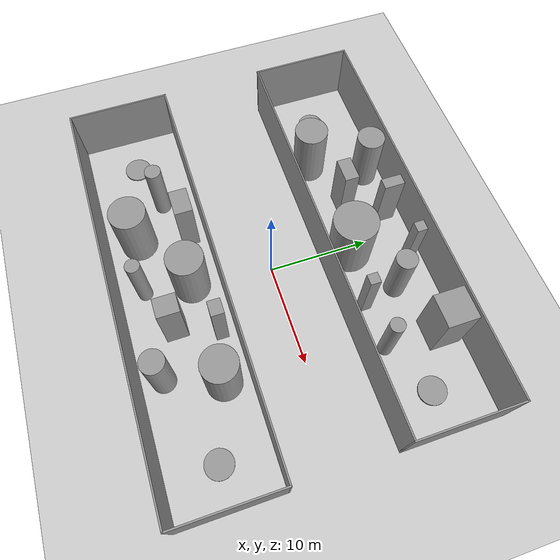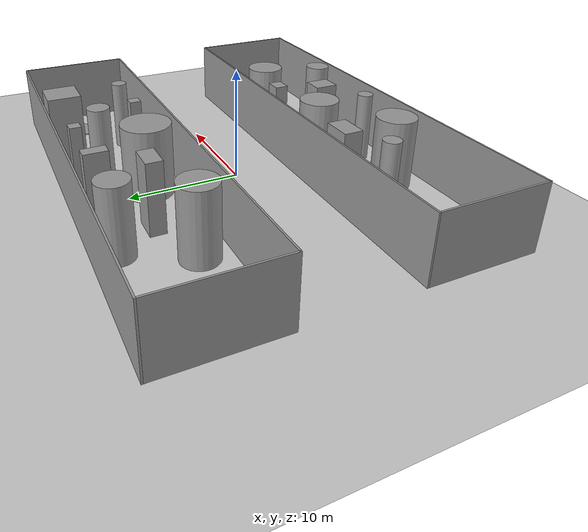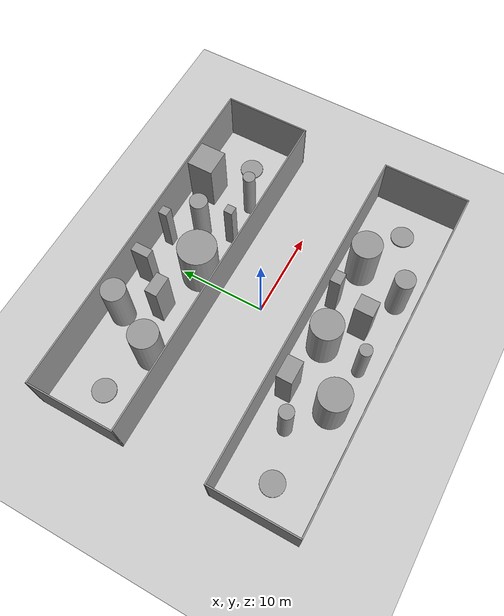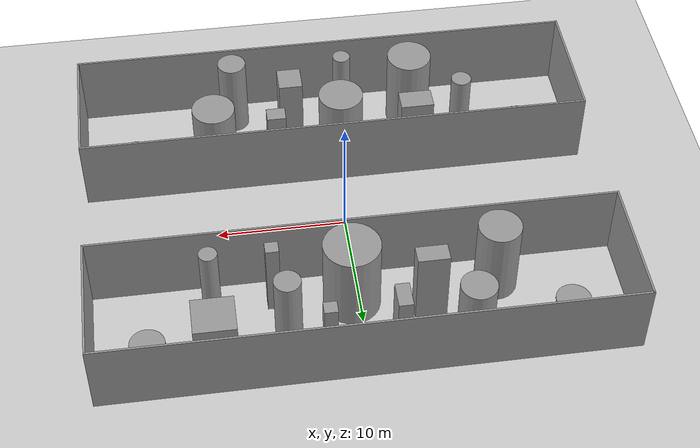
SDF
<sdf version="1.6">
 <world name="default">
  <light name="sun" type="directional">
   <pose>0 0 10 0 -0 0</pose>
   <diffuse>0.8 0.8 0.8 1</diffuse>
   <specular>0.2 0.2 0.2 1</specular>
   <attenuation>
    <range>1000</range>
    <constant>0.9</constant>
    <linear>0.01</linear>
    <quadratic>0.001</quadratic>
   </attenuation>
   <direction>-0.5 0.1 -0.9</direction>
  </light>
  <model name="ground_plane">
   <static>1</static>
   <link name="link">
    <collision name="collision">
     <geometry><plane><normal>0 0 1</normal><size>100 100</size></plane></geometry>
     <surface>
      <contact><collide_bitmask>65535</collide_bitmask></contact>
      <friction><ode><mu>100</mu><mu2>50</mu2></ode></friction>
     </surface>
    </collision>
    <visual name="visual">
     <cast_shadows>0</cast_shadows>
     <geometry><plane><normal>0 0 1</normal><size>100 100</size></plane></geometry>
     <material>
      <script><uri>file://media/materials/scripts/gazebo.material</uri><name>Gazebo/Grey</name></script>
     </material>
    </visual>
   </link>
  </model>
  <gravity>0 0 -9.8</gravity>
  <magnetic_field>6e-06 2.3e-05 -4.2e-05</magnetic_field>
  <atmosphere type="adiabatic"/>
  <physics name="default_physics" default="0" type="ode">
   <max_step_size>0.001</max_step_size>
   <real_time_factor>1</real_time_factor>
   <real_time_update_rate>1000</real_time_update_rate>
  </physics>
  <scene><ambient>0.4 0.4 0.4 1</ambient><background>0.7 0.7 0.7 1</background><shadows>1</shadows></scene>
  <spherical_coordinates>
   <surface_model>EARTH_WGS84</surface_model>
   <latitude_deg>0</latitude_deg>
   <longitude_deg>0</longitude_deg>
   <elevation>0</elevation>
   <heading_deg>0</heading_deg>
  </spherical_coordinates>
  <model name="simple_maze_4">
   <pose>0 -10 0 0 -0 0</pose>
   <link name="Wall_10">
    <collision name="Wall_10_Collision">
     <geometry><box><size>40 0.15 6</size></box></geometry>
     <pose>0 0 3 0 -0 0</pose>
    </collision>
    <visual name="Wall_10_Visual">
     <pose>0 0 3 0 -0 0</pose>
     <geometry><box><size>40 0.15 6</size></box></geometry>
     <material>
      <script><uri>file://media/materials/scripts/gazebo.material</uri><name>Gazebo/Grey</name></script>
      <ambient>1 1 1 1</ambient>
     </material>
     <meta><layer>0</layer></meta>
    </visual>
    <pose>0 -4.9255 0 0 -0 0</pose>
   </link>
   <link name="Wall_11">
    <collision name="Wall_11_Collision">
     <geometry><box><size>10 0.15 6</size></box></geometry>
     <pose>0 0 3 0 -0 0</pose>
    </collision>
    <visual name="Wall_11_Visual">
     <pose>0 0 3 0 -0 0</pose>
     <geometry><box><size>10 0.15 6</size></box></geometry>
     <material>
      <script><uri>file://media/materials/scripts/gazebo.material</uri><name>Gazebo/Grey</name></script>
      <ambient>1 1 1 1</ambient>
     </material>
     <meta><layer>0</layer></meta>
    </visual>
    <pose>19.925 -0.000501 0 0 -0 1.5708</pose>
   </link>
   <link name="Wall_12">
    <collision name="Wall_12_Collision">
     <geometry><box><size>40 0.15 6</size></box></geometry>
     <pose>0 0 3 0 -0 0</pose>
    </collision>
    <visual name="Wall_12_Visual">
     <pose>0 0 3 0 -0 0</pose>
     <geometry><box><size>40 0.15 6</size></box></geometry>
     <material>
      <script><uri>file://media/materials/scripts/gazebo.material</uri><name>Gazebo/Grey</name></script>
      <ambient>1 1 1 1</ambient>
     </material>
     <meta><layer>0</layer></meta>
    </visual>
    <pose>0 4.925 0 0 -0 3.14157</pose>
   </link>
   <link name="Wall_9">
    <collision name="Wall_9_Collision">
     <geometry><box><size>10 0.15 6</size></box></geometry>
     <pose>0 0 3 0 -0 0</pose>
    </collision>
    <visual name="Wall_9_Visual">
     <pose>0 0 3 0 -0 0</pose>
     <geometry><box><size>10 0.15 6</size></box></geometry>
     <material>
      <script><uri>file://media/materials/scripts/gazebo.material</uri><name>Gazebo/Grey</name></script>
      <ambient>1 1 1 1</ambient>
     </material>
     <meta><layer>0</layer></meta>
    </visual>
    <pose>-19.925 -0.000501 0 0 0 -1.5708</pose>
   </link>
   <static>1</static>
  </model>
  <model name="simple_maze_4_0">
   <pose>0 10 0 0 -0 0</pose>
   <link name="Wall_10">
    <collision name="Wall_10_Collision">
     <geometry><box><size>40 0.15 6</size></box></geometry>
     <pose>0 0 3 0 -0 0</pose>
    </collision>
    <visual name="Wall_10_Visual">
     <pose>0 0 3 0 -0 0</pose>
     <geometry><box><size>40 0.15 6</size></box></geometry>
     <material>
      <script><uri>file://media/materials/scripts/gazebo.material</uri><name>Gazebo/Grey</name></script>
      <ambient>1 1 1 1</ambient>
     </material>
     <meta><layer>0</layer></meta>
    </visual>
    <pose>0 -4.9255 0 0 -0 0</pose>
   </link>
   <link name="Wall_11">
    <collision name="Wall_11_Collision">
     <geometry><box><size>10 0.15 6</size></box></geometry>
     <pose>0 0 3 0 -0 0</pose>
    </collision>
    <visual name="Wall_11_Visual">
     <pose>0 0 3 0 -0 0</pose>
     <geometry><box><size>10 0.15 6</size></box></geometry>
     <material>
      <script><uri>file://media/materials/scripts/gazebo.material</uri><name>Gazebo/Grey</name></script>
      <ambient>1 1 1 1</ambient>
     </material>
     <meta><layer>0</layer></meta>
    </visual>
    <pose>19.925 -0.000501 0 0 -0 1.5708</pose>
   </link>
   <link name="Wall_12">
    <collision name="Wall_12_Collision">
     <geometry><box><size>40 0.15 6</size></box></geometry>
     <pose>0 0 3 0 -0 0</pose>
    </collision>
    <visual name="Wall_12_Visual">
     <pose>0 0 3 0 -0 0</pose>
     <geometry><box><size>40 0.15 6</size></box></geometry>
     <material>
      <script><uri>file://media/materials/scripts/gazebo.material</uri><name>Gazebo/Grey</name></script>
      <ambient>1 1 1 1</ambient>
     </material>
     <meta><layer>0</layer></meta>
    </visual>
    <pose>0 4.925 0 0 -0 3.14157</pose>
   </link>
   <link name="Wall_9">
    <collision name="Wall_9_Collision">
     <geometry><box><size>10 0.15 6</size></box></geometry>
     <pose>0 0 3 0 -0 0</pose>
    </collision>
    <visual name="Wall_9_Visual">
     <pose>0 0 3 0 -0 0</pose>
     <geometry><box><size>10 0.15 6</size></box></geometry>
     <material>
      <script><uri>file://media/materials/scripts/gazebo.material</uri><name>Gazebo/Grey</name></script>
      <ambient>1 1 1 1</ambient>
     </material>
     <meta><layer>0</layer></meta>
    </visual>
    <pose>-19.925 -0.000501 0 0 0 -1.5708</pose>
   </link>
   <static>1</static>
  </model>
  <model name="static_cylinder_clone">
   <link name="link">
    <inertial>
     <mass>1</mass>
     <inertia><ixx>0.145833</ixx><ixy>0</ixy><ixz>0</ixz><iyy>0.145833</iyy><iyz>0</iyz><izz>0.125</izz></inertia>
    </inertial>
    <visual name="visual">
     <geometry><cylinder><radius>1.12355</radius><length>6.41794</length></cylinder></geometry>
     <material>
      <script><name>Gazebo/Grey</name><uri>file://media/materials/scripts/gazebo.material</uri></script>
      <shader type="pixel"/>
      <ambient>0.3 0.3 0.3 1</ambient>
      <diffuse>0.7 0.7 0.7 1</diffuse>
      <specular>0.01 0.01 0.01 1</specular>
      <emissive>0 0 0 1</emissive>
     </material>
    </visual>
    <collision name="collision">
     <geometry><cylinder><radius>1.12355</radius><length>6.41794</length></cylinder></geometry>
     <surface>
      <friction>
       <ode><mu>1</mu><mu2>1</mu2><fdir1>0 0 0</fdir1><slip1>0</slip1><slip2>0</slip2></ode>
       <torsional>
        <coefficient>1</coefficient>
        <patch_radius>0</patch_radius>
        <surface_radius>0</surface_radius>
        <use_patch_radius>1</use_patch_radius>
        <ode><slip>0</slip></ode>
       </torsional>
      </friction>
      <bounce><restitution_coefficient>0</restitution_coefficient><threshold>1e+06</threshold></bounce>
      <contact>
       <collide_without_contact>0</collide_without_contact>
       <collide_without_contact_bitmask>1</collide_without_contact_bitmask>
       <collide_bitmask>1</collide_bitmask>
       <ode>
        <soft_cfm>0</soft_cfm>
        <soft_erp>0.2</soft_erp>
        <kp>1e+13</kp>
        <kd>1</kd>
        <max_vel>0.01</max_vel>
        <min_depth>0</min_depth>
       </ode>
       <bullet>
        <split_impulse>1</split_impulse>
        <split_impulse_penetration_threshold>-0.01</split_impulse_penetration_threshold>
        <soft_cfm>0</soft_cfm>
        <soft_erp>0.2</soft_erp>
        <kp>1e+13</kp>
        <kd>1</kd>
       </bullet>
      </contact>
     </surface>
    </collision>
   </link>
   <static>1</static>
   <pose>7.55909 -12.7483 3.22951 0 -0 0</pose>
  </model>
  <model name="static_cylinder_clone_0">
   <link name="link">
    <inertial>
     <mass>1</mass>
     <inertia><ixx>0.145833</ixx><ixy>0</ixy><ixz>0</ixz><iyy>0.145833</iyy><iyz>0</iyz><izz>0.125</izz></inertia>
    </inertial>
    <visual name="visual">
     <geometry><cylinder><radius>1.68732</radius><length>6.41794</length></cylinder></geometry>
     <material>
      <script><name>Gazebo/Grey</name><uri>file://media/materials/scripts/gazebo.material</uri></script>
      <shader type="pixel"/>
      <ambient>0.3 0.3 0.3 1</ambient>
      <diffuse>0.7 0.7 0.7 1</diffuse>
      <specular>0.01 0.01 0.01 1</specular>
      <emissive>0 0 0 1</emissive>
     </material>
    </visual>
    <collision name="collision">
     <geometry><cylinder><radius>1.68732</radius><length>6.41794</length></cylinder></geometry>
     <surface>
      <friction>
       <ode><mu>1</mu><mu2>1</mu2><fdir1>0 0 0</fdir1><slip1>0</slip1><slip2>0</slip2></ode>
       <torsional>
        <coefficient>1</coefficient>
        <patch_radius>0</patch_radius>
        <surface_radius>0</surface_radius>
        <use_patch_radius>1</use_patch_radius>
        <ode><slip>0</slip></ode>
       </torsional>
      </friction>
      <bounce><restitution_coefficient>0</restitution_coefficient><threshold>1e+06</threshold></bounce>
      <contact>
       <collide_without_contact>0</collide_without_contact>
       <collide_without_contact_bitmask>1</collide_without_contact_bitmask>
       <collide_bitmask>1</collide_bitmask>
       <ode>
        <soft_cfm>0</soft_cfm>
        <soft_erp>0.2</soft_erp>
        <kp>1e+13</kp>
        <kd>1</kd>
        <max_vel>0.01</max_vel>
        <min_depth>0</min_depth>
       </ode>
       <bullet>
        <split_impulse>1</split_impulse>
        <split_impulse_penetration_threshold>-0.01</split_impulse_penetration_threshold>
        <soft_cfm>0</soft_cfm>
        <soft_erp>0.2</soft_erp>
        <kp>1e+13</kp>
        <kd>1</kd>
       </bullet>
      </contact>
     </surface>
    </collision>
   </link>
   <static>1</static>
   <pose>9.42498 -7.59913 3.22951 0 -0 0</pose>
  </model>
  <model name="static_cylinder_clone_3">
   <link name="link">
    <inertial>
     <mass>1</mass>
     <inertia><ixx>0.145833</ixx><ixy>0</ixy><ixz>0</ixz><iyy>0.145833</iyy><iyz>0</iyz><izz>0.125</izz></inertia>
    </inertial>
    <visual name="visual">
     <geometry><cylinder><radius>1.76601</radius><length>6.41794</length></cylinder></geometry>
     <material>
      <script><name>Gazebo/Grey</name><uri>file://media/materials/scripts/gazebo.material</uri></script>
      <shader type="pixel"/>
      <ambient>0.3 0.3 0.3 1</ambient>
      <diffuse>0.7 0.7 0.7 1</diffuse>
      <specular>0.01 0.01 0.01 1</specular>
      <emissive>0 0 0 1</emissive>
     </material>
    </visual>
    <collision name="collision">
     <geometry><cylinder><radius>1.76601</radius><length>6.41794</length></cylinder></geometry>
     <surface>
      <friction>
       <ode><mu>1</mu><mu2>1</mu2><fdir1>0 0 0</fdir1><slip1>0</slip1><slip2>0</slip2></ode>
       <torsional>
        <coefficient>1</coefficient>
        <patch_radius>0</patch_radius>
        <surface_radius>0</surface_radius>
        <use_patch_radius>1</use_patch_radius>
        <ode><slip>0</slip></ode>
       </torsional>
      </friction>
      <bounce><restitution_coefficient>0</restitution_coefficient><threshold>1e+06</threshold></bounce>
      <contact>
       <collide_without_contact>0</collide_without_contact>
       <collide_without_contact_bitmask>1</collide_without_contact_bitmask>
       <collide_bitmask>1</collide_bitmask>
       <ode>
        <soft_cfm>0</soft_cfm>
        <soft_erp>0.2</soft_erp>
        <kp>1e+13</kp>
        <kd>1</kd>
        <max_vel>0.01</max_vel>
        <min_depth>0</min_depth>
       </ode>
       <bullet>
        <split_impulse>1</split_impulse>
        <split_impulse_penetration_threshold>-0.01</split_impulse_penetration_threshold>
        <soft_cfm>0</soft_cfm>
        <soft_erp>0.2</soft_erp>
        <kp>1e+13</kp>
        <kd>1</kd>
       </bullet>
      </contact>
     </surface>
    </collision>
   </link>
   <static>1</static>
   <pose>-0.741462 -7.90723 3.22951 0 -0 0</pose>
  </model>
  <model name="static_cylinder_clone_4">
   <link name="link">
    <inertial>
     <mass>1</mass>
     <inertia><ixx>0.145833</ixx><ixy>0</ixy><ixz>0</ixz><iyy>0.145833</iyy><iyz>0</iyz><izz>0.125</izz></inertia>
    </inertial>
    <visual name="visual">
     <geometry><cylinder><radius>0.694723</radius><length>6.41794</length></cylinder></geometry>
     <material>
      <script><name>Gazebo/Grey</name><uri>file://media/materials/scripts/gazebo.material</uri></script>
      <shader type="pixel"/>
      <ambient>0.3 0.3 0.3 1</ambient>
      <diffuse>0.7 0.7 0.7 1</diffuse>
      <specular>0.01 0.01 0.01 1</specular>
      <emissive>0 0 0 1</emissive>
     </material>
    </visual>
    <collision name="collision">
     <geometry><cylinder><radius>0.694723</radius><length>6.41794</length></cylinder></geometry>
     <surface>
      <friction>
       <ode><mu>1</mu><mu2>1</mu2><fdir1>0 0 0</fdir1><slip1>0</slip1><slip2>0</slip2></ode>
       <torsional>
        <coefficient>1</coefficient>
        <patch_radius>0</patch_radius>
        <surface_radius>0</surface_radius>
        <use_patch_radius>1</use_patch_radius>
        <ode><slip>0</slip></ode>
       </torsional>
      </friction>
      <bounce><restitution_coefficient>0</restitution_coefficient><threshold>1e+06</threshold></bounce>
      <contact>
       <collide_without_contact>0</collide_without_contact>
       <collide_without_contact_bitmask>1</collide_without_contact_bitmask>
       <collide_bitmask>1</collide_bitmask>
       <ode>
        <soft_cfm>0</soft_cfm>
        <soft_erp>0.2</soft_erp>
        <kp>1e+13</kp>
        <kd>1</kd>
        <max_vel>0.01</max_vel>
        <min_depth>0</min_depth>
       </ode>
       <bullet>
        <split_impulse>1</split_impulse>
        <split_impulse_penetration_threshold>-0.01</split_impulse_penetration_threshold>
        <soft_cfm>0</soft_cfm>
        <soft_erp>0.2</soft_erp>
        <kp>1e+13</kp>
        <kd>1</kd>
       </bullet>
      </contact>
     </surface>
    </collision>
   </link>
   <static>1</static>
   <pose>-1.38622 -12.4473 3.22951 0 -0 0</pose>
  </model>
  <model name="static_cylinder_clone_5">
   <link name="link">
    <inertial>
     <mass>1</mass>
     <inertia><ixx>0.145833</ixx><ixy>0</ixy><ixz>0</ixz><iyy>0.145833</iyy><iyz>0</iyz><izz>0.125</izz></inertia>
    </inertial>
    <visual name="visual">
     <geometry><cylinder><radius>0.787455</radius><length>6.41794</length></cylinder></geometry>
     <material>
      <script><name>Gazebo/Grey</name><uri>file://media/materials/scripts/gazebo.material</uri></script>
      <shader type="pixel"/>
      <ambient>0.3 0.3 0.3 1</ambient>
      <diffuse>0.7 0.7 0.7 1</diffuse>
      <specular>0.01 0.01 0.01 1</specular>
      <emissive>0 0 0 1</emissive>
     </material>
    </visual>
    <collision name="collision">
     <geometry><cylinder><radius>0.787455</radius><length>6.41794</length></cylinder></geometry>
     <surface>
      <friction>
       <ode><mu>1</mu><mu2>1</mu2><fdir1>0 0 0</fdir1><slip1>0</slip1><slip2>0</slip2></ode>
       <torsional>
        <coefficient>1</coefficient>
        <patch_radius>0</patch_radius>
        <surface_radius>0</surface_radius>
        <use_patch_radius>1</use_patch_radius>
        <ode><slip>0</slip></ode>
       </torsional>
      </friction>
      <bounce><restitution_coefficient>0</restitution_coefficient><threshold>1e+06</threshold></bounce>
      <contact>
       <collide_without_contact>0</collide_without_contact>
       <collide_without_contact_bitmask>1</collide_without_contact_bitmask>
       <collide_bitmask>1</collide_bitmask>
       <ode>
        <soft_cfm>0</soft_cfm>
        <soft_erp>0.2</soft_erp>
        <kp>1e+13</kp>
        <kd>1</kd>
        <max_vel>0.01</max_vel>
        <min_depth>0</min_depth>
       </ode>
       <bullet>
        <split_impulse>1</split_impulse>
        <split_impulse_penetration_threshold>-0.01</split_impulse_penetration_threshold>
        <soft_cfm>0</soft_cfm>
        <soft_erp>0.2</soft_erp>
        <kp>1e+13</kp>
        <kd>1</kd>
       </bullet>
      </contact>
     </surface>
    </collision>
   </link>
   <static>1</static>
   <pose>-10.5795 -8.48713 3.22951 0 -0 0</pose>
  </model>
  <model name="static_cylinder_clone_6">
   <link name="link">
    <inertial>
     <mass>1</mass>
     <inertia><ixx>0.145833</ixx><ixy>0</ixy><ixz>0</ixz><iyy>0.145833</iyy><iyz>0</iyz><izz>0.125</izz></inertia>
    </inertial>
    <visual name="visual">
     <geometry><cylinder><radius>1.76378</radius><length>6.41794</length></cylinder></geometry>
     <material>
      <script><name>Gazebo/Grey</name><uri>file://media/materials/scripts/gazebo.material</uri></script>
      <shader type="pixel"/>
      <ambient>0.3 0.3 0.3 1</ambient>
      <diffuse>0.7 0.7 0.7 1</diffuse>
      <specular>0.01 0.01 0.01 1</specular>
      <emissive>0 0 0 1</emissive>
     </material>
    </visual>
    <collision name="collision">
     <geometry><cylinder><radius>1.76378</radius><length>6.41794</length></cylinder></geometry>
     <surface>
      <friction>
       <ode><mu>1</mu><mu2>1</mu2><fdir1>0 0 0</fdir1><slip1>0</slip1><slip2>0</slip2></ode>
       <torsional>
        <coefficient>1</coefficient>
        <patch_radius>0</patch_radius>
        <surface_radius>0</surface_radius>
        <use_patch_radius>1</use_patch_radius>
        <ode><slip>0</slip></ode>
       </torsional>
      </friction>
      <bounce><restitution_coefficient>0</restitution_coefficient><threshold>1e+06</threshold></bounce>
      <contact>
       <collide_without_contact>0</collide_without_contact>
       <collide_without_contact_bitmask>1</collide_without_contact_bitmask>
       <collide_bitmask>1</collide_bitmask>
       <ode>
        <soft_cfm>0</soft_cfm>
        <soft_erp>0.2</soft_erp>
        <kp>1e+13</kp>
        <kd>1</kd>
        <max_vel>0.01</max_vel>
        <min_depth>0</min_depth>
       </ode>
       <bullet>
        <split_impulse>1</split_impulse>
        <split_impulse_penetration_threshold>-0.01</split_impulse_penetration_threshold>
        <soft_cfm>0</soft_cfm>
        <soft_erp>0.2</soft_erp>
        <kp>1e+13</kp>
        <kd>1</kd>
       </bullet>
      </contact>
     </surface>
    </collision>
   </link>
   <static>1</static>
   <pose>-6.8732 -11.778 3.22951 0 -0 0</pose>
  </model>
  <model name="static_cube_clone">
   <link name="link_1">
    <pose>0 -5e-06 0 0 -0 0</pose>
    <inertial>
     <mass>1</mass>
     <inertia>
      <ixx>0.166667</ixx>
      <ixy>0</ixy>
      <ixz>0</ixz>
      <iyy>0.166667</iyy>
      <iyz>0</iyz>
      <izz>0.166667</izz>
     </inertia>
    </inertial>
    <visual name="visual">
     <geometry><box><size>1.86768 2.12283 6.63548</size></box></geometry>
     <material>
      <lighting>1</lighting>
      <script><uri>file://media/materials/scripts/gazebo.material</uri><name>Gazebo/Grey</name></script>
      <shader type="pixel"/>
      <ambient>0.3 0.3 0.3 1</ambient>
      <diffuse>0.7 0.7 0.7 1</diffuse>
      <specular>0.01 0.01 0.01 1</specular>
      <emissive>0 0 0 1</emissive>
     </material>
    </visual>
    <collision name="collision">
     <geometry><box><size>1.86768 2.12283 6.63548</size></box></geometry>
     <surface>
      <friction>
       <ode><mu>1</mu><mu2>1</mu2><fdir1>0 0 0</fdir1><slip1>0</slip1><slip2>0</slip2></ode>
       <torsional>
        <coefficient>1</coefficient>
        <patch_radius>0</patch_radius>
        <surface_radius>0</surface_radius>
        <use_patch_radius>1</use_patch_radius>
        <ode><slip>0</slip></ode>
       </torsional>
      </friction>
      <bounce><restitution_coefficient>0</restitution_coefficient><threshold>1e+06</threshold></bounce>
      <contact>
       <collide_without_contact>0</collide_without_contact>
       <collide_without_contact_bitmask>1</collide_without_contact_bitmask>
       <collide_bitmask>1</collide_bitmask>
       <ode>
        <soft_cfm>0</soft_cfm>
        <soft_erp>0.2</soft_erp>
        <kp>1e+13</kp>
        <kd>1</kd>
        <max_vel>0.01</max_vel>
        <min_depth>0</min_depth>
       </ode>
       <bullet>
        <split_impulse>1</split_impulse>
        <split_impulse_penetration_threshold>-0.01</split_impulse_penetration_threshold>
        <soft_cfm>0</soft_cfm>
        <soft_erp>0.2</soft_erp>
        <kp>1e+13</kp>
        <kd>1</kd>
       </bullet>
      </contact>
     </surface>
    </collision>
   </link>
   <static>1</static>
   <pose>3.0825 -10.526 2.96225 0 -0 0</pose>
  </model>
  <model name="static_cube_clone_0">
   <link name="link_1">
    <pose>0 -5e-06 0 0 -0 0</pose>
    <inertial>
     <mass>1</mass>
     <inertia>
      <ixx>0.166667</ixx>
      <ixy>0</ixy>
      <ixz>0</ixz>
      <iyy>0.166667</iyy>
      <iyz>0</iyz>
      <izz>0.166667</izz>
     </inertia>
    </inertial>
    <visual name="visual">
     <geometry><box><size>1.46963 1.21042 6.63548</size></box></geometry>
     <material>
      <lighting>1</lighting>
      <script><uri>file://media/materials/scripts/gazebo.material</uri><name>Gazebo/Grey</name></script>
      <shader type="pixel"/>
      <ambient>0.3 0.3 0.3 1</ambient>
      <diffuse>0.7 0.7 0.7 1</diffuse>
      <specular>0.01 0.01 0.01 1</specular>
      <emissive>0 0 0 1</emissive>
     </material>
    </visual>
    <collision name="collision">
     <geometry><box><size>1.46963 1.21042 6.63548</size></box></geometry>
     <surface>
      <friction>
       <ode><mu>1</mu><mu2>1</mu2><fdir1>0 0 0</fdir1><slip1>0</slip1><slip2>0</slip2></ode>
       <torsional>
        <coefficient>1</coefficient>
        <patch_radius>0</patch_radius>
        <surface_radius>0</surface_radius>
        <use_patch_radius>1</use_patch_radius>
        <ode><slip>0</slip></ode>
       </torsional>
      </friction>
      <bounce><restitution_coefficient>0</restitution_coefficient><threshold>1e+06</threshold></bounce>
      <contact>
       <collide_without_contact>0</collide_without_contact>
       <collide_without_contact_bitmask>1</collide_without_contact_bitmask>
       <collide_bitmask>1</collide_bitmask>
       <ode>
        <soft_cfm>0</soft_cfm>
        <soft_erp>0.2</soft_erp>
        <kp>1e+13</kp>
        <kd>1</kd>
        <max_vel>0.01</max_vel>
        <min_depth>0</min_depth>
       </ode>
       <bullet>
        <split_impulse>1</split_impulse>
        <split_impulse_penetration_threshold>-0.01</split_impulse_penetration_threshold>
        <soft_cfm>0</soft_cfm>
        <soft_erp>0.2</soft_erp>
        <kp>1e+13</kp>
        <kd>1</kd>
       </bullet>
      </contact>
     </surface>
    </collision>
   </link>
   <static>1</static>
   <pose>4.572 -6.54343 2.96225 0 -0 0</pose>
  </model>
  <model name="static_cube_clone_1">
   <link name="link_1">
    <pose>0 -5e-06 0 0 -0 0</pose>
    <inertial>
     <mass>1</mass>
     <inertia>
      <ixx>0.166667</ixx>
      <ixy>0</ixy>
      <ixz>0</ixz>
      <iyy>0.166667</iyy>
      <iyz>0</iyz>
      <izz>0.166667</izz>
     </inertia>
    </inertial>
    <visual name="visual">
     <geometry><box><size>2.57393 1.74212 6.63548</size></box></geometry>
     <material>
      <lighting>1</lighting>
      <script><uri>file://media/materials/scripts/gazebo.material</uri><name>Gazebo/Grey</name></script>
      <shader type="pixel"/>
      <ambient>0.3 0.3 0.3 1</ambient>
      <diffuse>0.7 0.7 0.7 1</diffuse>
      <specular>0.01 0.01 0.01 1</specular>
      <emissive>0 0 0 1</emissive>
     </material>
    </visual>
    <collision name="collision">
     <geometry><box><size>2.57393 1.74212 6.63548</size></box></geometry>
     <surface>
      <friction>
       <ode><mu>1</mu><mu2>1</mu2><fdir1>0 0 0</fdir1><slip1>0</slip1><slip2>0</slip2></ode>
       <torsional>
        <coefficient>1</coefficient>
        <patch_radius>0</patch_radius>
        <surface_radius>0</surface_radius>
        <use_patch_radius>1</use_patch_radius>
        <ode><slip>0</slip></ode>
       </torsional>
      </friction>
      <bounce><restitution_coefficient>0</restitution_coefficient><threshold>1e+06</threshold></bounce>
      <contact>
       <collide_without_contact>0</collide_without_contact>
       <collide_without_contact_bitmask>1</collide_without_contact_bitmask>
       <collide_bitmask>1</collide_bitmask>
       <ode>
        <soft_cfm>0</soft_cfm>
        <soft_erp>0.2</soft_erp>
        <kp>1e+13</kp>
        <kd>1</kd>
        <max_vel>0.01</max_vel>
        <min_depth>0</min_depth>
       </ode>
       <bullet>
        <split_impulse>1</split_impulse>
        <split_impulse_penetration_threshold>-0.01</split_impulse_penetration_threshold>
        <soft_cfm>0</soft_cfm>
        <soft_erp>0.2</soft_erp>
        <kp>1e+13</kp>
        <kd>1</kd>
       </bullet>
      </contact>
     </surface>
    </collision>
   </link>
   <static>1</static>
   <pose>-6.6209 -6.77618 2.96225 0 -0 0</pose>
  </model>
  <model name="static_cylinder_clone_1">
   <link name="link">
    <inertial>
     <mass>1</mass>
     <inertia><ixx>0.145833</ixx><ixy>0</ixy><ixz>0</ixz><iyy>0.145833</iyy><iyz>0</iyz><izz>0.125</izz></inertia>
    </inertial>
    <visual name="visual">
     <geometry><cylinder><radius>0.694723</radius><length>6.41794</length></cylinder></geometry>
     <material>
      <script><name>Gazebo/Grey</name><uri>file://media/materials/scripts/gazebo.material</uri></script>
      <shader type="pixel"/>
      <ambient>0.3 0.3 0.3 1</ambient>
      <diffuse>0.7 0.7 0.7 1</diffuse>
      <specular>0.01 0.01 0.01 1</specular>
      <emissive>0 0 0 1</emissive>
     </material>
    </visual>
    <collision name="collision">
     <geometry><cylinder><radius>0.694723</radius><length>6.41794</length></cylinder></geometry>
     <surface>
      <friction>
       <ode><mu>1</mu><mu2>1</mu2><fdir1>0 0 0</fdir1><slip1>0</slip1><slip2>0</slip2></ode>
       <torsional>
        <coefficient>1</coefficient>
        <patch_radius>0</patch_radius>
        <surface_radius>0</surface_radius>
        <use_patch_radius>1</use_patch_radius>
        <ode><slip>0</slip></ode>
       </torsional>
      </friction>
      <bounce><restitution_coefficient>0</restitution_coefficient><threshold>1e+06</threshold></bounce>
      <contact>
       <collide_without_contact>0</collide_without_contact>
       <collide_without_contact_bitmask>1</collide_without_contact_bitmask>
       <collide_bitmask>1</collide_bitmask>
       <ode>
        <soft_cfm>0</soft_cfm>
        <soft_erp>0.2</soft_erp>
        <kp>1e+13</kp>
        <kd>1</kd>
        <max_vel>0.01</max_vel>
        <min_depth>0</min_depth>
       </ode>
       <bullet>
        <split_impulse>1</split_impulse>
        <split_impulse_penetration_threshold>-0.01</split_impulse_penetration_threshold>
        <soft_cfm>0</soft_cfm>
        <soft_erp>0.2</soft_erp>
        <kp>1e+13</kp>
        <kd>1</kd>
       </bullet>
      </contact>
     </surface>
    </collision>
   </link>
   <static>1</static>
   <pose>10.9626 7.4911 3.22951 0 -0 0</pose>
  </model>
  <model name="static_cylinder_clone_2">
   <link name="link">
    <inertial>
     <mass>1</mass>
     <inertia><ixx>0.145833</ixx><ixy>0</ixy><ixz>0</ixz><iyy>0.145833</iyy><iyz>0</iyz><izz>0.125</izz></inertia>
    </inertial>
    <visual name="visual">
     <geometry><cylinder><radius>1.00879</radius><length>6.41794</length></cylinder></geometry>
     <material>
      <script><name>Gazebo/Grey</name><uri>file://media/materials/scripts/gazebo.material</uri></script>
      <shader type="pixel"/>
      <ambient>0.3 0.3 0.3 1</ambient>
      <diffuse>0.7 0.7 0.7 1</diffuse>
      <specular>0.01 0.01 0.01 1</specular>
      <emissive>0 0 0 1</emissive>
     </material>
    </visual>
    <collision name="collision">
     <geometry><cylinder><radius>1.00879</radius><length>6.41794</length></cylinder></geometry>
     <surface>
      <friction>
       <ode><mu>1</mu><mu2>1</mu2><fdir1>0 0 0</fdir1><slip1>0</slip1><slip2>0</slip2></ode>
       <torsional>
        <coefficient>1</coefficient>
        <patch_radius>0</patch_radius>
        <surface_radius>0</surface_radius>
        <use_patch_radius>1</use_patch_radius>
        <ode><slip>0</slip></ode>
       </torsional>
      </friction>
      <bounce><restitution_coefficient>0</restitution_coefficient><threshold>1e+06</threshold></bounce>
      <contact>
       <collide_without_contact>0</collide_without_contact>
       <collide_without_contact_bitmask>1</collide_without_contact_bitmask>
       <collide_bitmask>1</collide_bitmask>
       <ode>
        <soft_cfm>0</soft_cfm>
        <soft_erp>0.2</soft_erp>
        <kp>1e+13</kp>
        <kd>1</kd>
        <max_vel>0.01</max_vel>
        <min_depth>0</min_depth>
       </ode>
       <bullet>
        <split_impulse>1</split_impulse>
        <split_impulse_penetration_threshold>-0.01</split_impulse_penetration_threshold>
        <soft_cfm>0</soft_cfm>
        <soft_erp>0.2</soft_erp>
        <kp>1e+13</kp>
        <kd>1</kd>
       </bullet>
      </contact>
     </surface>
    </collision>
   </link>
   <static>1</static>
   <pose>5.58827 10.786 3.22951 0 -0 0</pose>
  </model>
  <model name="static_cylinder_clone_7">
   <link name="link">
    <inertial>
     <mass>1</mass>
     <inertia><ixx>0.145833</ixx><ixy>0</ixy><ixz>0</ixz><iyy>0.145833</iyy><iyz>0</iyz><izz>0.125</izz></inertia>
    </inertial>
    <visual name="visual">
     <geometry><cylinder><radius>2.15784</radius><length>6.41794</length></cylinder></geometry>
     <material>
      <script><name>Gazebo/Grey</name><uri>file://media/materials/scripts/gazebo.material</uri></script>
      <shader type="pixel"/>
      <ambient>0.3 0.3 0.3 1</ambient>
      <diffuse>0.7 0.7 0.7 1</diffuse>
      <specular>0.01 0.01 0.01 1</specular>
      <emissive>0 0 0 1</emissive>
     </material>
    </visual>
    <collision name="collision">
     <geometry><cylinder><radius>2.15784</radius><length>6.41794</length></cylinder></geometry>
     <surface>
      <friction>
       <ode><mu>1</mu><mu2>1</mu2><fdir1>0 0 0</fdir1><slip1>0</slip1><slip2>0</slip2></ode>
       <torsional>
        <coefficient>1</coefficient>
        <patch_radius>0</patch_radius>
        <surface_radius>0</surface_radius>
        <use_patch_radius>1</use_patch_radius>
        <ode><slip>0</slip></ode>
       </torsional>
      </friction>
      <bounce><restitution_coefficient>0</restitution_coefficient><threshold>1e+06</threshold></bounce>
      <contact>
       <collide_without_contact>0</collide_without_contact>
       <collide_without_contact_bitmask>1</collide_without_contact_bitmask>
       <collide_bitmask>1</collide_bitmask>
       <ode>
        <soft_cfm>0</soft_cfm>
        <soft_erp>0.2</soft_erp>
        <kp>1e+13</kp>
        <kd>1</kd>
        <max_vel>0.01</max_vel>
        <min_depth>0</min_depth>
       </ode>
       <bullet>
        <split_impulse>1</split_impulse>
        <split_impulse_penetration_threshold>-0.01</split_impulse_penetration_threshold>
        <soft_cfm>0</soft_cfm>
        <soft_erp>0.2</soft_erp>
        <kp>1e+13</kp>
        <kd>1</kd>
       </bullet>
      </contact>
     </surface>
    </collision>
   </link>
   <static>1</static>
   <pose>0.587121 8.0027 3.22951 0 -0 0</pose>
  </model>
  <model name="static_cylinder_clone_8">
   <link name="link">
    <inertial>
     <mass>1</mass>
     <inertia><ixx>0.145833</ixx><ixy>0</ixy><ixz>0</ixz><iyy>0.145833</iyy><iyz>0</iyz><izz>0.125</izz></inertia>
    </inertial>
    <visual name="visual">
     <geometry><cylinder><radius>1.35404</radius><length>6.41794</length></cylinder></geometry>
     <material>
      <script><name>Gazebo/Grey</name><uri>file://media/materials/scripts/gazebo.material</uri></script>
      <shader type="pixel"/>
      <ambient>0.3 0.3 0.3 1</ambient>
      <diffuse>0.7 0.7 0.7 1</diffuse>
      <specular>0.01 0.01 0.01 1</specular>
      <emissive>0 0 0 1</emissive>
     </material>
    </visual>
    <collision name="collision">
     <geometry><cylinder><radius>1.35404</radius><length>6.41794</length></cylinder></geometry>
     <surface>
      <friction>
       <ode><mu>1</mu><mu2>1</mu2><fdir1>0 0 0</fdir1><slip1>0</slip1><slip2>0</slip2></ode>
       <torsional>
        <coefficient>1</coefficient>
        <patch_radius>0</patch_radius>
        <surface_radius>0</surface_radius>
        <use_patch_radius>1</use_patch_radius>
        <ode><slip>0</slip></ode>
       </torsional>
      </friction>
      <bounce><restitution_coefficient>0</restitution_coefficient><threshold>1e+06</threshold></bounce>
      <contact>
       <collide_without_contact>0</collide_without_contact>
       <collide_without_contact_bitmask>1</collide_without_contact_bitmask>
       <collide_bitmask>1</collide_bitmask>
       <ode>
        <soft_cfm>0</soft_cfm>
        <soft_erp>0.2</soft_erp>
        <kp>1e+13</kp>
        <kd>1</kd>
        <max_vel>0.01</max_vel>
        <min_depth>0</min_depth>
       </ode>
       <bullet>
        <split_impulse>1</split_impulse>
        <split_impulse_penetration_threshold>-0.01</split_impulse_penetration_threshold>
        <soft_cfm>0</soft_cfm>
        <soft_erp>0.2</soft_erp>
        <kp>1e+13</kp>
        <kd>1</kd>
       </bullet>
      </contact>
     </surface>
    </collision>
   </link>
   <static>1</static>
   <pose>-7.75547 12.9671 3.22951 0 -0 0</pose>
  </model>
  <model name="static_cylinder_clone_9">
   <link name="link">
    <inertial>
     <mass>1</mass>
     <inertia><ixx>0.145833</ixx><ixy>0</ixy><ixz>0</ixz><iyy>0.145833</iyy><iyz>0</iyz><izz>0.125</izz></inertia>
    </inertial>
    <visual name="visual">
     <geometry><cylinder><radius>1.63171</radius><length>6.41794</length></cylinder></geometry>
     <material>
      <script><name>Gazebo/Grey</name><uri>file://media/materials/scripts/gazebo.material</uri></script>
      <shader type="pixel"/>
      <ambient>0.3 0.3 0.3 1</ambient>
      <diffuse>0.7 0.7 0.7 1</diffuse>
      <specular>0.01 0.01 0.01 1</specular>
      <emissive>0 0 0 1</emissive>
     </material>
    </visual>
    <collision name="collision">
     <geometry><cylinder><radius>1.63171</radius><length>6.41794</length></cylinder></geometry>
     <surface>
      <friction>
       <ode><mu>1</mu><mu2>1</mu2><fdir1>0 0 0</fdir1><slip1>0</slip1><slip2>0</slip2></ode>
       <torsional>
        <coefficient>1</coefficient>
        <patch_radius>0</patch_radius>
        <surface_radius>0</surface_radius>
        <use_patch_radius>1</use_patch_radius>
        <ode><slip>0</slip></ode>
       </torsional>
      </friction>
      <bounce><restitution_coefficient>0</restitution_coefficient><threshold>1e+06</threshold></bounce>
      <contact>
       <collide_without_contact>0</collide_without_contact>
       <collide_without_contact_bitmask>1</collide_without_contact_bitmask>
       <collide_bitmask>1</collide_bitmask>
       <ode>
        <soft_cfm>0</soft_cfm>
        <soft_erp>0.2</soft_erp>
        <kp>1e+13</kp>
        <kd>1</kd>
        <max_vel>0.01</max_vel>
        <min_depth>0</min_depth>
       </ode>
       <bullet>
        <split_impulse>1</split_impulse>
        <split_impulse_penetration_threshold>-0.01</split_impulse_penetration_threshold>
        <soft_cfm>0</soft_cfm>
        <soft_erp>0.2</soft_erp>
        <kp>1e+13</kp>
        <kd>1</kd>
       </bullet>
      </contact>
     </surface>
    </collision>
   </link>
   <static>1</static>
   <pose>-10.3876 7.6498 3.22951 0 -0 0</pose>
  </model>
  <model name="static_cube_clone_2">
   <link name="link_1">
    <pose>0 -5e-06 0 0 -0 0</pose>
    <inertial>
     <mass>1</mass>
     <inertia>
      <ixx>0.166667</ixx>
      <ixy>0</ixy>
      <ixz>0</ixz>
      <iyy>0.166667</iyy>
      <iyz>0</iyz>
      <izz>0.166667</izz>
     </inertia>
    </inertial>
    <visual name="visual">
     <geometry><box><size>1 1 6.63548</size></box></geometry>
     <material>
      <lighting>1</lighting>
      <script><uri>file://media/materials/scripts/gazebo.material</uri><name>Gazebo/Grey</name></script>
      <shader type="pixel"/>
      <ambient>0.3 0.3 0.3 1</ambient>
      <diffuse>0.7 0.7 0.7 1</diffuse>
      <specular>0.01 0.01 0.01 1</specular>
      <emissive>0 0 0 1</emissive>
     </material>
    </visual>
    <collision name="collision">
     <geometry><box><size>1 1 6.63548</size></box></geometry>
     <surface>
      <friction>
       <ode><mu>1</mu><mu2>1</mu2><fdir1>0 0 0</fdir1><slip1>0</slip1><slip2>0</slip2></ode>
       <torsional>
        <coefficient>1</coefficient>
        <patch_radius>0</patch_radius>
        <surface_radius>0</surface_radius>
        <use_patch_radius>1</use_patch_radius>
        <ode><slip>0</slip></ode>
       </torsional>
      </friction>
      <bounce><restitution_coefficient>0</restitution_coefficient><threshold>1e+06</threshold></bounce>
      <contact>
       <collide_without_contact>0</collide_without_contact>
       <collide_without_contact_bitmask>1</collide_without_contact_bitmask>
       <collide_bitmask>1</collide_bitmask>
       <ode>
        <soft_cfm>0</soft_cfm>
        <soft_erp>0.2</soft_erp>
        <kp>1e+13</kp>
        <kd>1</kd>
        <max_vel>0.01</max_vel>
        <min_depth>0</min_depth>
       </ode>
       <bullet>
        <split_impulse>1</split_impulse>
        <split_impulse_penetration_threshold>-0.01</split_impulse_penetration_threshold>
        <soft_cfm>0</soft_cfm>
        <soft_erp>0.2</soft_erp>
        <kp>1e+13</kp>
        <kd>1</kd>
       </bullet>
      </contact>
     </surface>
    </collision>
   </link>
   <static>1</static>
   <pose>6.36168 7.3194 2.96225 0 -0 0</pose>
  </model>
  <model name="static_cube_clone_3">
   <link name="link_1">
    <pose>0 -5e-06 0 0 -0 0</pose>
    <inertial>
     <mass>1</mass>
     <inertia>
      <ixx>0.166667</ixx>
      <ixy>0</ixy>
      <ixz>0</ixz>
      <iyy>0.166667</iyy>
      <iyz>0</iyz>
      <izz>0.166667</izz>
     </inertia>
    </inertial>
    <visual name="visual">
     <geometry><box><size>1 1 6.63548</size></box></geometry>
     <material>
      <lighting>1</lighting>
      <script><uri>file://media/materials/scripts/gazebo.material</uri><name>Gazebo/Grey</name></script>
      <shader type="pixel"/>
      <ambient>0.3 0.3 0.3 1</ambient>
      <diffuse>0.7 0.7 0.7 1</diffuse>
      <specular>0.01 0.01 0.01 1</specular>
      <emissive>0 0 0 1</emissive>
     </material>
    </visual>
    <collision name="collision">
     <geometry><box><size>1 1 6.63548</size></box></geometry>
     <surface>
      <friction>
       <ode><mu>1</mu><mu2>1</mu2><fdir1>0 0 0</fdir1><slip1>0</slip1><slip2>0</slip2></ode>
       <torsional>
        <coefficient>1</coefficient>
        <patch_radius>0</patch_radius>
        <surface_radius>0</surface_radius>
        <use_patch_radius>1</use_patch_radius>
        <ode><slip>0</slip></ode>
       </torsional>
      </friction>
      <bounce><restitution_coefficient>0</restitution_coefficient><threshold>1e+06</threshold></bounce>
      <contact>
       <collide_without_contact>0</collide_without_contact>
       <collide_without_contact_bitmask>1</collide_without_contact_bitmask>
       <collide_bitmask>1</collide_bitmask>
       <ode>
        <soft_cfm>0</soft_cfm>
        <soft_erp>0.2</soft_erp>
        <kp>1e+13</kp>
        <kd>1</kd>
        <max_vel>0.01</max_vel>
        <min_depth>0</min_depth>
       </ode>
       <bullet>
        <split_impulse>1</split_impulse>
        <split_impulse_penetration_threshold>-0.01</split_impulse_penetration_threshold>
        <soft_cfm>0</soft_cfm>
        <soft_erp>0.2</soft_erp>
        <kp>1e+13</kp>
        <kd>1</kd>
       </bullet>
      </contact>
     </surface>
    </collision>
   </link>
   <static>1</static>
   <pose>2.85173 13.416 2.96225 0 -0 0</pose>
  </model>
  <model name="static_cube_clone_4">
   <link name="link_1">
    <pose>0 -5e-06 0 0 -0 0</pose>
    <inertial>
     <mass>1</mass>
     <inertia>
      <ixx>0.166667</ixx>
      <ixy>0</ixy>
      <ixz>0</ixz>
      <iyy>0.166667</iyy>
      <iyz>0</iyz>
      <izz>0.166667</izz>
     </inertia>
    </inertial>
    <visual name="visual">
     <geometry><box><size>3.11817 3.0072 6.63548</size></box></geometry>
     <material>
      <lighting>1</lighting>
      <script><uri>file://media/materials/scripts/gazebo.material</uri><name>Gazebo/Grey</name></script>
      <shader type="pixel"/>
      <ambient>0.3 0.3 0.3 1</ambient>
      <diffuse>0.7 0.7 0.7 1</diffuse>
      <specular>0.01 0.01 0.01 1</specular>
      <emissive>0 0 0 1</emissive>
     </material>
    </visual>
    <collision name="collision">
     <geometry><box><size>3.11817 3.0072 6.63548</size></box></geometry>
     <surface>
      <friction>
       <ode><mu>1</mu><mu2>1</mu2><fdir1>0 0 0</fdir1><slip1>0</slip1><slip2>0</slip2></ode>
       <torsional>
        <coefficient>1</coefficient>
        <patch_radius>0</patch_radius>
        <surface_radius>0</surface_radius>
        <use_patch_radius>1</use_patch_radius>
        <ode><slip>0</slip></ode>
       </torsional>
      </friction>
      <bounce><restitution_coefficient>0</restitution_coefficient><threshold>1e+06</threshold></bounce>
      <contact>
       <collide_without_contact>0</collide_without_contact>
       <collide_without_contact_bitmask>1</collide_without_contact_bitmask>
       <collide_bitmask>1</collide_bitmask>
       <ode>
        <soft_cfm>0</soft_cfm>
        <soft_erp>0.2</soft_erp>
        <kp>1e+13</kp>
        <kd>1</kd>
        <max_vel>0.01</max_vel>
        <min_depth>0</min_depth>
       </ode>
       <bullet>
        <split_impulse>1</split_impulse>
        <split_impulse_penetration_threshold>-0.01</split_impulse_penetration_threshold>
        <soft_cfm>0</soft_cfm>
        <soft_erp>0.2</soft_erp>
        <kp>1e+13</kp>
        <kd>1</kd>
       </bullet>
      </contact>
     </surface>
    </collision>
   </link>
   <static>1</static>
   <pose>10.9752 12.9748 2.96225 0 -0 0</pose>
  </model>
  <model name="static_cube_clone_5">
   <link name="link_1">
    <pose>0 -5e-06 0 0 -0 0</pose>
    <inertial>
     <mass>1</mass>
     <inertia>
      <ixx>0.166667</ixx>
      <ixy>0</ixy>
      <ixz>0</ixz>
      <iyy>0.166667</iyy>
      <iyz>0</iyz>
      <izz>0.166667</izz>
     </inertia>
    </inertial>
    <visual name="visual">
     <geometry><box><size>2.38563 1.40232 6.63548</size></box></geometry>
     <material>
      <lighting>1</lighting>
      <script><uri>file://media/materials/scripts/gazebo.material</uri><name>Gazebo/Grey</name></script>
      <shader type="pixel"/>
      <ambient>0.3 0.3 0.3 1</ambient>
      <diffuse>0.7 0.7 0.7 1</diffuse>
      <specular>0.01 0.01 0.01 1</specular>
      <emissive>0 0 0 1</emissive>
     </material>
    </visual>
    <collision name="collision">
     <geometry><box><size>2.38563 1.40232 6.63548</size></box></geometry>
     <surface>
      <friction>
       <ode><mu>1</mu><mu2>1</mu2><fdir1>0 0 0</fdir1><slip1>0</slip1><slip2>0</slip2></ode>
       <torsional>
        <coefficient>1</coefficient>
        <patch_radius>0</patch_radius>
        <surface_radius>0</surface_radius>
        <use_patch_radius>1</use_patch_radius>
        <ode><slip>0</slip></ode>
       </torsional>
      </friction>
      <bounce><restitution_coefficient>0</restitution_coefficient><threshold>1e+06</threshold></bounce>
      <contact>
       <collide_without_contact>0</collide_without_contact>
       <collide_without_contact_bitmask>1</collide_without_contact_bitmask>
       <collide_bitmask>1</collide_bitmask>
       <ode>
        <soft_cfm>0</soft_cfm>
        <soft_erp>0.2</soft_erp>
        <kp>1e+13</kp>
        <kd>1</kd>
        <max_vel>0.01</max_vel>
        <min_depth>0</min_depth>
       </ode>
       <bullet>
        <split_impulse>1</split_impulse>
        <split_impulse_penetration_threshold>-0.01</split_impulse_penetration_threshold>
        <soft_cfm>0</soft_cfm>
        <soft_erp>0.2</soft_erp>
        <kp>1e+13</kp>
        <kd>1</kd>
       </bullet>
      </contact>
     </surface>
    </collision>
   </link>
   <static>1</static>
   <pose>-5.06986 9.45119 2.96225 0 -0 0</pose>
  </model>
  <model name="static_cube_clone_6">
   <link name="link_1">
    <pose>0 -5e-06 0 0 -0 0</pose>
    <inertial>
     <mass>1</mass>
     <inertia>
      <ixx>0.166667</ixx>
      <ixy>0</ixy>
      <ixz>0</ixz>
      <iyy>0.166667</iyy>
      <iyz>0</iyz>
      <izz>0.166667</izz>
     </inertia>
    </inertial>
    <visual name="visual">
     <geometry><box><size>1.07173 2.02084 6.63548</size></box></geometry>
     <material>
      <lighting>1</lighting>
      <script><uri>file://media/materials/scripts/gazebo.material</uri><name>Gazebo/Grey</name></script>
      <shader type="pixel"/>
      <ambient>0.3 0.3 0.3 1</ambient>
      <diffuse>0.7 0.7 0.7 1</diffuse>
      <specular>0.01 0.01 0.01 1</specular>
      <emissive>0 0 0 1</emissive>
     </material>
    </visual>
    <collision name="collision">
     <geometry><box><size>1.07173 2.02084 6.63548</size></box></geometry>
     <surface>
      <friction>
       <ode><mu>1</mu><mu2>1</mu2><fdir1>0 0 0</fdir1><slip1>0</slip1><slip2>0</slip2></ode>
       <torsional>
        <coefficient>1</coefficient>
        <patch_radius>0</patch_radius>
        <surface_radius>0</surface_radius>
        <use_patch_radius>1</use_patch_radius>
        <ode><slip>0</slip></ode>
       </torsional>
      </friction>
      <bounce><restitution_coefficient>0</restitution_coefficient><threshold>1e+06</threshold></bounce>
      <contact>
       <collide_without_contact>0</collide_without_contact>
       <collide_without_contact_bitmask>1</collide_without_contact_bitmask>
       <collide_bitmask>1</collide_bitmask>
       <ode>
        <soft_cfm>0</soft_cfm>
        <soft_erp>0.2</soft_erp>
        <kp>1e+13</kp>
        <kd>1</kd>
        <max_vel>0.01</max_vel>
        <min_depth>0</min_depth>
       </ode>
       <bullet>
        <split_impulse>1</split_impulse>
        <split_impulse_penetration_threshold>-0.01</split_impulse_penetration_threshold>
        <soft_cfm>0</soft_cfm>
        <soft_erp>0.2</soft_erp>
        <kp>1e+13</kp>
        <kd>1</kd>
       </bullet>
      </contact>
     </surface>
    </collision>
   </link>
   <static>1</static>
   <pose>-2.40416 12.9684 2.96225 0 -0 0</pose>
  </model>
  <model name="static_cylinder_clone_10">
   <link name="link">
    <inertial>
     <mass>1</mass>
     <inertia><ixx>0.145833</ixx><ixy>0</ixy><ixz>0</ixz><iyy>0.145833</iyy><iyz>0</iyz><izz>0.125</izz></inertia>
    </inertial>
    <visual name="visual">
     <geometry><cylinder><radius>1.35079</radius><length>0.201389</length></cylinder></geometry>
     <material>
      <script><name>Gazebo/Grey</name><uri>file://media/materials/scripts/gazebo.material</uri></script>
      <shader type="pixel"/>
      <ambient>0.3 0.3 0.3 1</ambient>
      <diffuse>0.7 0.7 0.7 1</diffuse>
      <specular>0.01 0.01 0.01 1</specular>
      <emissive>0 0 0 1</emissive>
     </material>
    </visual>
    <collision name="collision">
     <geometry><cylinder><radius>1.35079</radius><length>0.201389</length></cylinder></geometry>
     <surface>
      <friction>
       <ode><mu>1</mu><mu2>1</mu2><fdir1>0 0 0</fdir1><slip1>0</slip1><slip2>0</slip2></ode>
       <torsional>
        <coefficient>1</coefficient>
        <patch_radius>0</patch_radius>
        <surface_radius>0</surface_radius>
        <use_patch_radius>1</use_patch_radius>
        <ode><slip>0</slip></ode>
       </torsional>
      </friction>
      <bounce><restitution_coefficient>0</restitution_coefficient><threshold>1e+06</threshold></bounce>
      <contact>
       <collide_without_contact>0</collide_without_contact>
       <collide_without_contact_bitmask>1</collide_without_contact_bitmask>
       <collide_bitmask>1</collide_bitmask>
       <ode>
        <soft_cfm>0</soft_cfm>
        <soft_erp>0.2</soft_erp>
        <kp>1e+13</kp>
        <kd>1</kd>
        <max_vel>0.01</max_vel>
        <min_depth>0</min_depth>
       </ode>
       <bullet>
        <split_impulse>1</split_impulse>
        <split_impulse_penetration_threshold>-0.01</split_impulse_penetration_threshold>
        <soft_cfm>0</soft_cfm>
        <soft_erp>0.2</soft_erp>
        <kp>1e+13</kp>
        <kd>1</kd>
       </bullet>
      </contact>
     </surface>
    </collision>
   </link>
   <static>1</static>
   <pose>-16 10 0 0 -0 0</pose>
  </model>
  <model name="static_cylinder_clone_10_clone">
   <link name="link">
    <inertial>
     <mass>1</mass>
     <inertia><ixx>0.145833</ixx><ixy>0</ixy><ixz>0</ixz><iyy>0.145833</iyy><iyz>0</iyz><izz>0.125</izz></inertia>
    </inertial>
    <visual name="visual">
     <geometry><cylinder><radius>1.35079</radius><length>0.201391</length></cylinder></geometry>
     <material>
      <script><name>Gazebo/Grey</name><uri>file://media/materials/scripts/gazebo.material</uri></script>
      <shader type="pixel"/>
      <ambient>0.3 0.3 0.3 1</ambient>
      <diffuse>0.7 0.7 0.7 1</diffuse>
      <specular>0.01 0.01 0.01 1</specular>
      <emissive>0 0 0 1</emissive>
     </material>
    </visual>
    <collision name="collision">
     <geometry><cylinder><radius>1.35079</radius><length>0.201391</length></cylinder></geometry>
     <surface>
      <friction>
       <ode><mu>1</mu><mu2>1</mu2><fdir1>0 0 0</fdir1><slip1>0</slip1><slip2>0</slip2></ode>
       <torsional>
        <coefficient>1</coefficient>
        <patch_radius>0</patch_radius>
        <surface_radius>0</surface_radius>
        <use_patch_radius>1</use_patch_radius>
        <ode><slip>0</slip></ode>
       </torsional>
      </friction>
      <bounce><restitution_coefficient>0</restitution_coefficient><threshold>1e+06</threshold></bounce>
      <contact>
       <collide_without_contact>0</collide_without_contact>
       <collide_without_contact_bitmask>1</collide_without_contact_bitmask>
       <collide_bitmask>1</collide_bitmask>
       <ode>
        <soft_cfm>0</soft_cfm>
        <soft_erp>0.2</soft_erp>
        <kp>1e+13</kp>
        <kd>1</kd>
        <max_vel>0.01</max_vel>
        <min_depth>0</min_depth>
       </ode>
       <bullet>
        <split_impulse>1</split_impulse>
        <split_impulse_penetration_threshold>-0.01</split_impulse_penetration_threshold>
        <soft_cfm>0</soft_cfm>
        <soft_erp>0.2</soft_erp>
        <kp>1e+13</kp>
        <kd>1</kd>
       </bullet>
      </contact>
     </surface>
    </collision>
   </link>
   <static>1</static>
   <pose>16 10 0 0 -0 0</pose>
  </model>
  <model name="static_cylinder_clone_10_clone_clone">
   <link name="link">
    <inertial>
     <mass>1</mass>
     <inertia><ixx>0.145833</ixx><ixy>0</ixy><ixz>0</ixz><iyy>0.145833</iyy><iyz>0</iyz><izz>0.125</izz></inertia>
    </inertial>
    <visual name="visual">
     <geometry><cylinder><radius>1.35079</radius><length>0.201391</length></cylinder></geometry>
     <material>
      <script><name>Gazebo/Grey</name><uri>file://media/materials/scripts/gazebo.material</uri></script>
      <shader type="pixel"/>
      <ambient>0.3 0.3 0.3 1</ambient>
      <diffuse>0.7 0.7 0.7 1</diffuse>
      <specular>0.01 0.01 0.01 1</specular>
      <emissive>0 0 0 1</emissive>
     </material>
    </visual>
    <collision name="collision">
     <geometry><cylinder><radius>1.35079</radius><length>0.201391</length></cylinder></geometry>
     <surface>
      <friction>
       <ode><mu>1</mu><mu2>1</mu2><fdir1>0 0 0</fdir1><slip1>0</slip1><slip2>0</slip2></ode>
       <torsional>
        <coefficient>1</coefficient>
        <patch_radius>0</patch_radius>
        <surface_radius>0</surface_radius>
        <use_patch_radius>1</use_patch_radius>
        <ode><slip>0</slip></ode>
       </torsional>
      </friction>
      <bounce><restitution_coefficient>0</restitution_coefficient><threshold>1e+06</threshold></bounce>
      <contact>
       <collide_without_contact>0</collide_without_contact>
       <collide_without_contact_bitmask>1</collide_without_contact_bitmask>
       <collide_bitmask>1</collide_bitmask>
       <ode>
        <soft_cfm>0</soft_cfm>
        <soft_erp>0.2</soft_erp>
        <kp>1e+13</kp>
        <kd>1</kd>
        <max_vel>0.01</max_vel>
        <min_depth>0</min_depth>
       </ode>
       <bullet>
        <split_impulse>1</split_impulse>
        <split_impulse_penetration_threshold>-0.01</split_impulse_penetration_threshold>
        <soft_cfm>0</soft_cfm>
        <soft_erp>0.2</soft_erp>
        <kp>1e+13</kp>
        <kd>1</kd>
       </bullet>
      </contact>
     </surface>
    </collision>
   </link>
   <static>1</static>
   <pose>16 -10 0 0 -0 0</pose>
  </model>
  <model name="static_cylinder_clone_10_clone_clone_clone">
   <link name="link">
    <inertial>
     <mass>1</mass>
     <inertia><ixx>0.145833</ixx><ixy>0</ixy><ixz>0</ixz><iyy>0.145833</iyy><iyz>0</iyz><izz>0.125</izz></inertia>
    </inertial>
    <visual name="visual">
     <geometry><cylinder><radius>1.35079</radius><length>0.201391</length></cylinder></geometry>
     <material>
      <script><name>Gazebo/Grey</name><uri>file://media/materials/scripts/gazebo.material</uri></script>
      <shader type="pixel"/>
      <ambient>0.3 0.3 0.3 1</ambient>
      <diffuse>0.7 0.7 0.7 1</diffuse>
      <specular>0.01 0.01 0.01 1</specular>
      <emissive>0 0 0 1</emissive>
     </material>
    </visual>
    <collision name="collision">
     <geometry><cylinder><radius>1.35079</radius><length>0.201391</length></cylinder></geometry>
     <surface>
      <friction>
       <ode><mu>1</mu><mu2>1</mu2><fdir1>0 0 0</fdir1><slip1>0</slip1><slip2>0</slip2></ode>
       <torsional>
        <coefficient>1</coefficient>
        <patch_radius>0</patch_radius>
        <surface_radius>0</surface_radius>
        <use_patch_radius>1</use_patch_radius>
        <ode><slip>0</slip></ode>
       </torsional>
      </friction>
      <bounce><restitution_coefficient>0</restitution_coefficient><threshold>1e+06</threshold></bounce>
      <contact>
       <collide_without_contact>0</collide_without_contact>
       <collide_without_contact_bitmask>1</collide_without_contact_bitmask>
       <collide_bitmask>1</collide_bitmask>
       <ode>
        <soft_cfm>0</soft_cfm>
        <soft_erp>0.2</soft_erp>
        <kp>1e+13</kp>
        <kd>1</kd>
        <max_vel>0.01</max_vel>
        <min_depth>0</min_depth>
       </ode>
       <bullet>
        <split_impulse>1</split_impulse>
        <split_impulse_penetration_threshold>-0.01</split_impulse_penetration_threshold>
        <soft_cfm>0</soft_cfm>
        <soft_erp>0.2</soft_erp>
        <kp>1e+13</kp>
        <kd>1</kd>
       </bullet>
      </contact>
     </surface>
    </collision>
   </link>
   <static>1</static>
   <pose>-16 -10 0 0 -0 0</pose>
  </model>
 </world>
</sdf>
